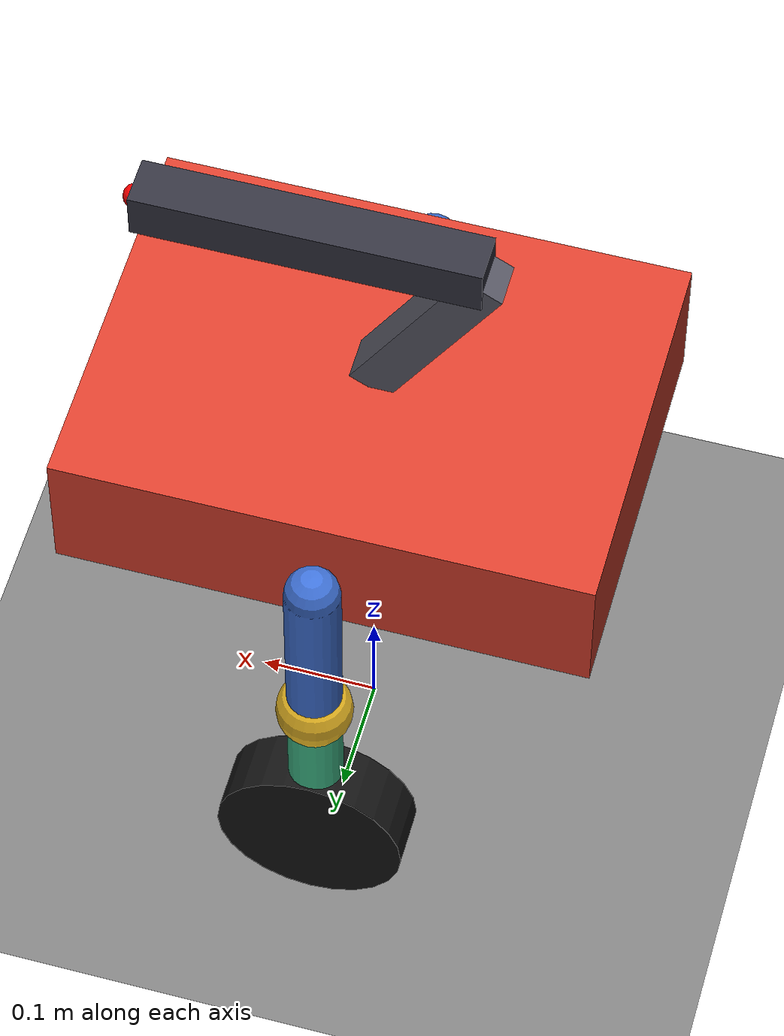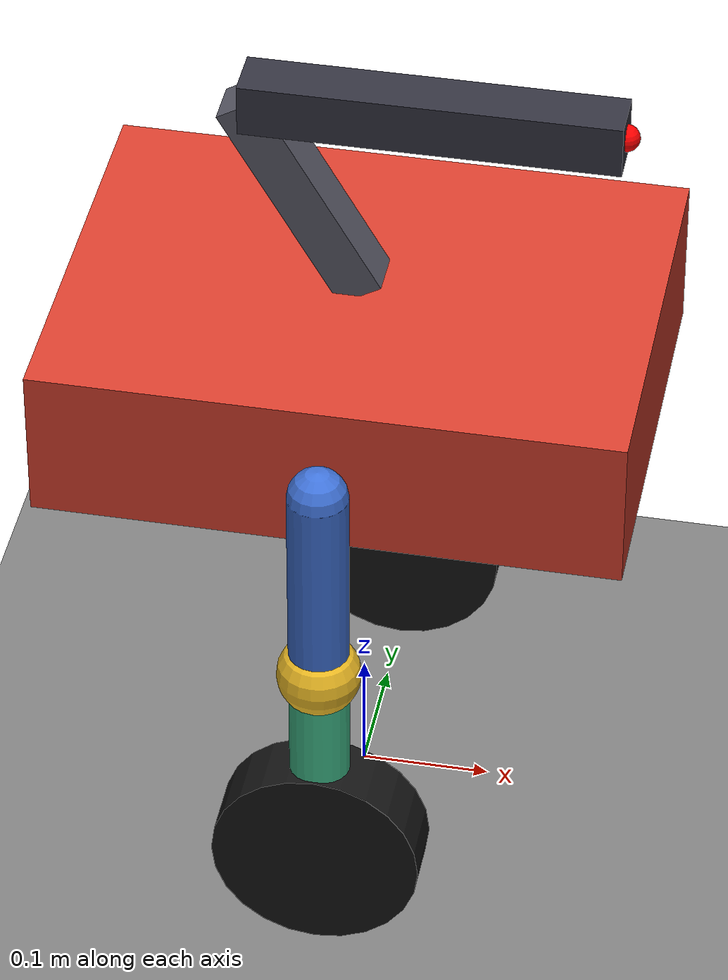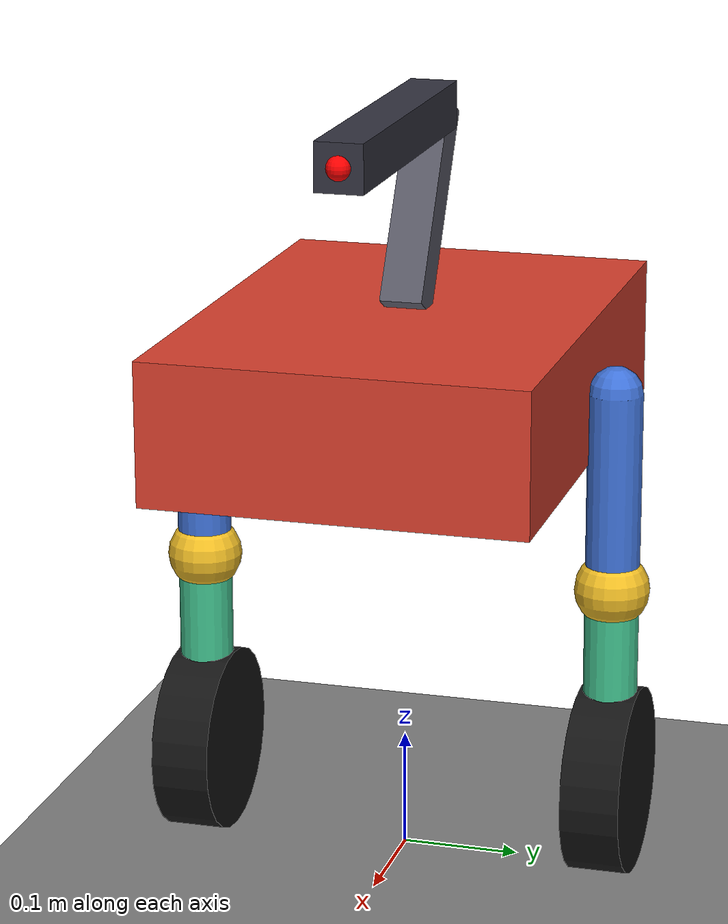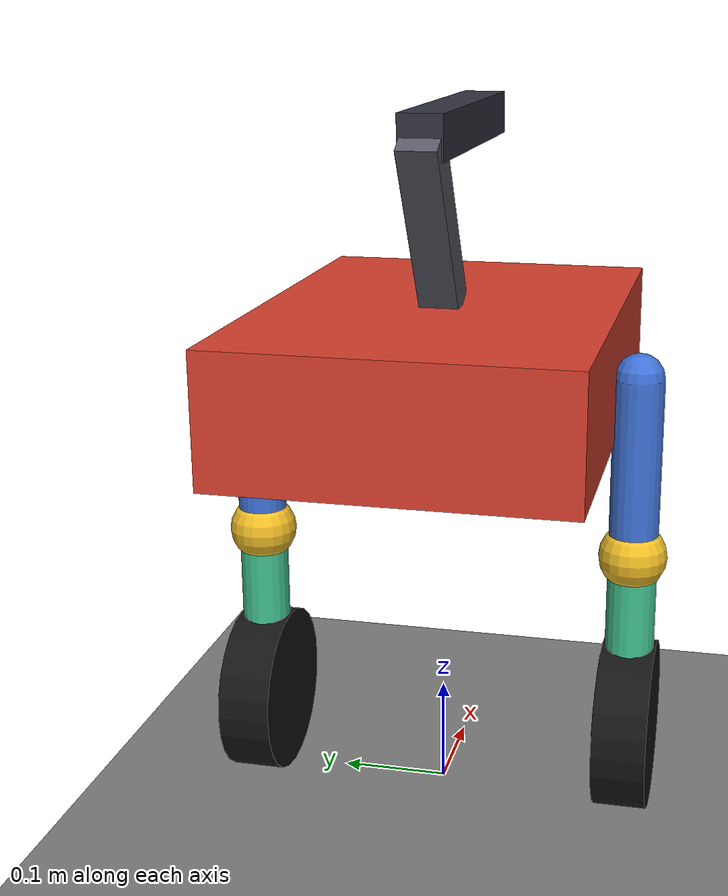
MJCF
<mujoco model="wheel_leg_car_2link">

    <compiler angle="degree" autolimits="true" />

    <option timestep="0.002" integrator="RK4" gravity="0 0 -9.81">
        <flag contact="enable" />
    </option>

    <default>
        <joint damping="0.2" armature="0.01" />
        <geom condim="3" friction="1.0 0.01 0.001" />

        <!-- 髋关节：大腿相对车身转动 -->
        <default class="hip">
            <joint type="hinge" axis="0 1 0" limited="true"
                   range="-60 60" damping="1.0" armature="0.02" />
        </default>

        <!-- 膝关节：小腿相对大腿转动 -->
        <default class="knee">
            <joint type="hinge" axis="0 1 0" limited="true"
                   range="-120 30" damping="0.8" armature="0.015" />
        </default>

        <default class="leg_link">
            <geom type="capsule" size="0.023"
                  rgba="0.25 0.45 0.85 1" />
        </default>

        <default class="wheel">
            <joint type="hinge" axis="0 1 0" limited="false"
                   damping="0.05" armature="0.01" />
            <!-- cylinder 的 size 分别为：轮子半径、轮子半宽 -->
            <geom type="cylinder" size="0.08 0.025" euler="90 0 0"
                  rgba="0.08 0.08 0.08 1"
                  friction="1.2 0.005 0.0001" />
        </default>

        <default class="gimbal">
            <joint type="hinge" limited="false" damping="0.5" armature="0.005"/>
        </default>
    </default>

    <asset>
        <texture name="ground_tex" type="2d" builtin="checker"
                 rgb1="0.15 0.15 0.15" rgb2="0.85 0.85 0.85"
                 width="512" height="512" />
        <material name="ground_mat" texture="ground_tex"
                  texrepeat="4 4" texuniform="true" reflectance="0.05" />
    </asset>

    <worldbody>
        <light name="top_light" pos="0 0 3" dir="0 0 -1" />

        <geom name="ground" type="plane" size="5 5 0.1"
              material="ground_mat" friction="1.2 0.01 0.001" />

        <body name="base_link" pos="0 0 0.42">
            <freejoint name="base_link" />

            <geom name="base_geom" type="box" size="0.22 0.16 0.06"
                  mass="4.0" rgba="0.85 0.25 0.18 1" />

            <site name="imu" pos="0 0 0" size="0.012"
                  rgba="1 1 0 1" />

            <camera name="follow" mode="trackcom"
                    pos="-1.2 -1.2 0.8"
                    xyaxes="0.707 -0.707 0 0.408 0.408 0.816" />

            <!--云台：一个yaw轴一个pitch轴    -->
            <body name="gimbal_yaw" pos="0 0 0.06">
                <joint name ="gimbal_yaw_joint" class="gimbal" axis="0 0 1" />
                <geom name="gimbal_yaw_arm" class="gimbal" type="box"
                size="0.018 0.018 0.09" pos="-0.045 0 0.078" euler="0 -30 0"
                rgba="0.35 0.35 0.40 1"  mass="0.2775" />
                <body name="gimbal_pitch" pos="-0.09 0 0.156">
                    <geom name="muzzle" class="gimbal" type="box"
                    size="0.14 0.02 0.02" pos="0.14 0 0"
                    rgba="0.20 0.20 0.25 1" mass="0.25" />
                    <site name="muzzle_site" pos="0.28 0 0" size="0.01" rgba="1 0 0 1"/>
                </body>
            </body>
            <!-- ==================== 左腿 ==================== -->
            <!-- 第一个 link：左大腿，直接通过髋关节连接车身 -->
            <body name="left_upper_leg" pos="0 0.18 0">
                <joint name="left_hip" class="hip" />
                <geom name="left_upper_leg_geom" class="leg_link"
                      fromto="0 0 0 0 0 -0.17"
                      mass="0.22" rgba="0.25 0.45 0.85 1" />

                <!-- 第二个 link：左小腿，通过膝关节连接大腿 -->
                <body name="left_lower_leg" pos="0 0 -0.17">
                    <joint name="left_knee" class="knee" />

                    <!-- 膝关节位置标记 -->
                    <geom name="left_knee_geom" type="sphere" size="0.032"
                          mass="0.03" rgba="0.95 0.75 0.15 1" />

                    <geom name="left_lower_leg_geom" class="leg_link"
                          fromto="0 0 0 0 0 -0.17"
                          mass="0.22" rgba="0.25 0.75 0.55 1" />

                    <!-- 左轮安装在小腿末端 -->
                    <body name="left_wheel" pos="0 0 -0.17">
                        <joint name="left_wheel_joint" class="wheel" />
                        <geom name="left_wheel_geom" class="wheel" mass="0.50" />
                    </body>
                </body>
            </body>

            <!-- ==================== 右腿 ==================== -->
            <!-- 第一个 link：右大腿，直接通过髋关节连接车身 -->
            <body name="right_upper_leg" pos="0 -0.18 0">
                <joint name="right_hip" class="hip" />
                <geom name="right_upper_leg_geom" class="leg_link"
                      fromto="0 0 0 0 0 -0.17"
                      mass="0.22" rgba="0.25 0.45 0.85 1" />

                <!-- 第二个 link：右小腿，通过膝关节连接大腿 -->
                <body name="right_lower_leg" pos="0 0 -0.17">
                    <joint name="right_knee" class="knee" />

                    <!-- 膝关节位置标记 -->
                    <geom name="right_knee_geom" type="sphere" size="0.032"
                          mass="0.03" rgba="0.95 0.75 0.15 1" />

                    <geom name="right_lower_leg_geom" class="leg_link"
                          fromto="0 0 0 0 0 -0.17"
                          mass="0.22" rgba="0.25 0.75 0.55 1" />

                    <!-- 右轮安装在小腿末端 -->
                    <body name="right_wheel" pos="0 0 -0.17">
                        <joint name="right_wheel_joint" class="wheel" />
                        <geom name="right_wheel_geom" class="wheel" mass="0.50" />
                    </body>
                </body>
            </body>
        </body>

    </worldbody>

    <actuator>
        <!-- 左腿：髋、膝、轮毂 -->
        <motor name="left_hip_motor" joint="left_hip"
               gear="20" ctrllimited="true" ctrlrange="-1 1" />
        <motor name="left_knee_motor" joint="left_knee"
               gear="15" ctrllimited="true" ctrlrange="-1 1" />
        <motor name="left_wheel_motor" joint="left_wheel_joint"
               gear="5" ctrllimited="true" ctrlrange="-1 1" />

        <!-- 右腿：髋、膝、轮毂 -->
        <motor name="right_hip_motor" joint="right_hip"
               gear="20" ctrllimited="true" ctrlrange="-1 1" />
        <motor name="right_knee_motor" joint="right_knee"
               gear="15" ctrllimited="true" ctrlrange="-1 1" />
        <motor name="right_wheel_motor" joint="right_wheel_joint"
               gear="5" ctrllimited="true" ctrlrange="-1 1" />

        <!-- 云台：yaw、pitch -->
        <motor name="gimbal_yaw_motor" joint="gimbal_yaw_joint"
               gear="5" ctrllimited="true" ctrlrange="-1 1" />

    </actuator>

    <sensor>
        <!-- 关节角度 -->
        <jointpos name="left_hip_pos" joint="left_hip" />
        <jointpos name="left_knee_pos" joint="left_knee" />
        <jointpos name="right_hip_pos" joint="right_hip" />
        <jointpos name="right_knee_pos" joint="right_knee" />

        <!-- 关节速度 -->
        <jointvel name="left_hip_vel" joint="left_hip" />
        <jointvel name="left_knee_vel" joint="left_knee" />
        <jointvel name="left_wheel_vel" joint="left_wheel_joint" />
        <jointvel name="right_hip_vel" joint="right_hip" />
        <jointvel name="right_knee_vel" joint="right_knee" />
        <jointvel name="right_wheel_vel" joint="right_wheel_joint" />

        <!--  云台  -->
        <jointpos name="gimbal_yaw_pos" joint="gimbal_yaw_joint" />
        <jointvel name="gimbal_yaw_vel" joint="gimbal_yaw_joint" />

        <!-- 车身姿态与 IMU -->
        <framequat name="base_quat" objtype="body" objname="base_link" />
        <gyro name="base_gyro" site="imu" />
        <accelerometer name="base_acc" site="imu" />
    </sensor>

</mujoco>
